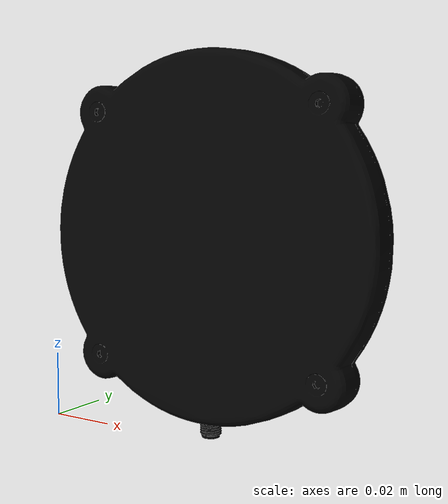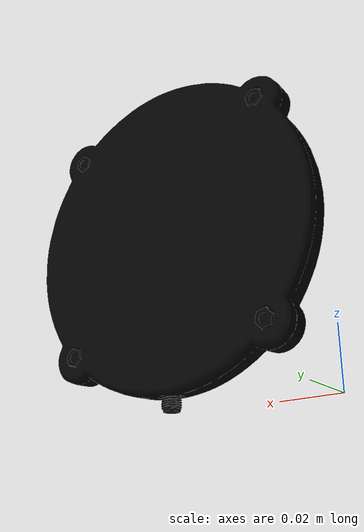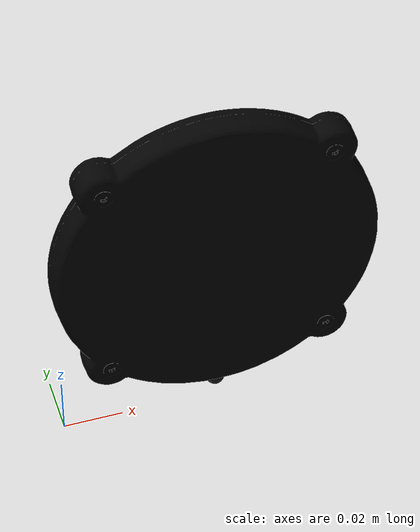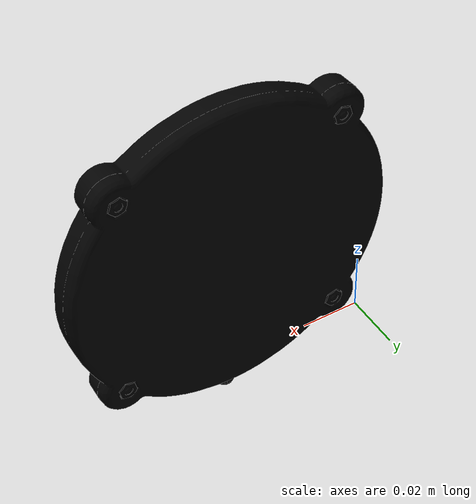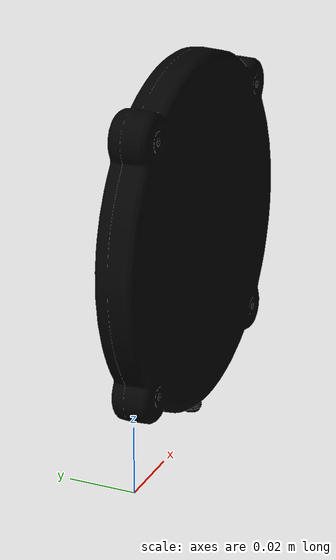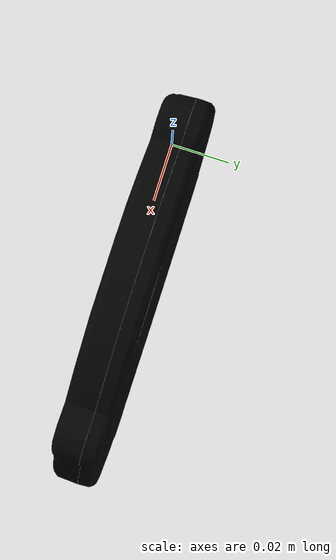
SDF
<?xml version="1.0" ?>
<sdf version="1.6">
  <model name="RC100">
    <plugin name="rx_plugin" filename="libwibotic_coil_plugin.so">
      <coilType>receive</coilType>
    </plugin>

    <link name="coil_frame"/>

    <joint name="rc100_joint1" type="fixed">
      <parent>coil_frame</parent>
      <child>coil_link</child>
    </joint>

    <link name="coil_link">
      <collision name="collision">
        <geometry>
          <mesh>
            <uri>model://../meshes/RC100.dae</uri>
          </mesh>
        </geometry>
      </collision>
      <!-- Coil dimensions: x=0.109, y=0.0121, z=0.113 -->
      <collision name="COIL_CENTER">
        <pose>0.0545 0.00605 0.0565  0 0 0</pose>
        <geometry>
          <sphere>
            <radius>0.001</radius>
          </sphere>
        </geometry>
      </collision>
      <visual name="visual">
        <geometry>
          <mesh>
            <uri>model://../meshes/RC100.dae</uri>
          </mesh>
        </geometry>
      </visual>
    </link>
  </model>
</sdf>
